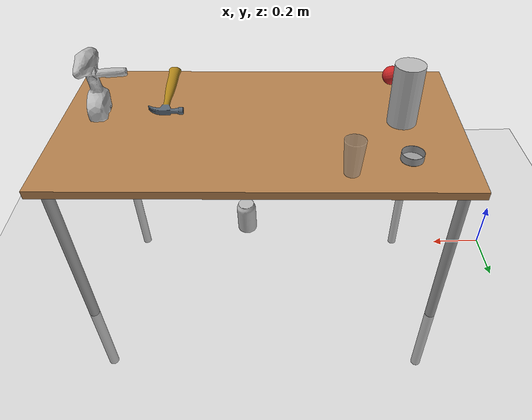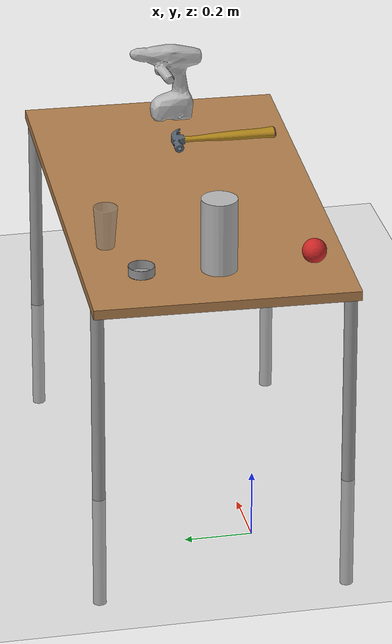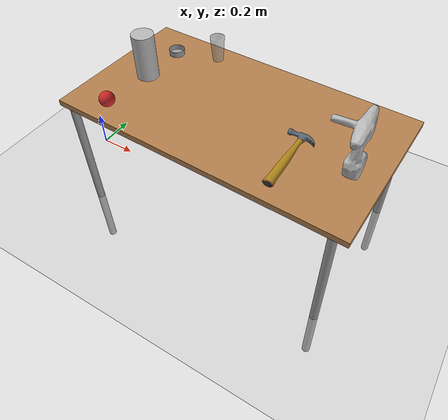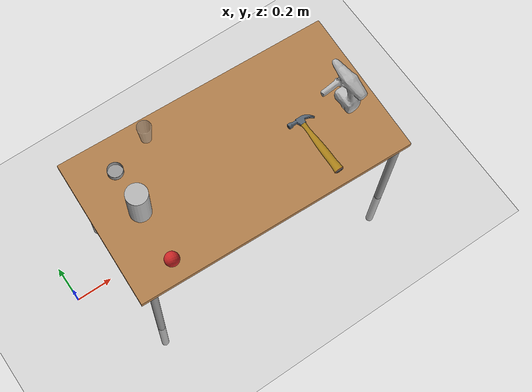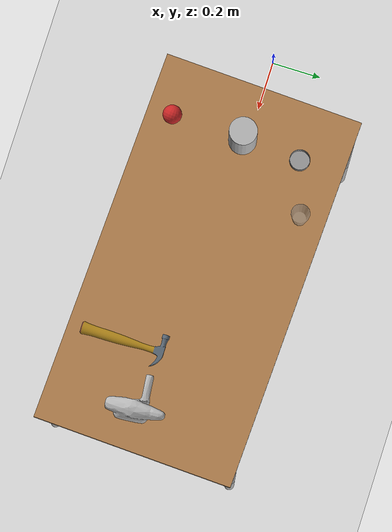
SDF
<sdf version="1.4">
 <world name="table_with_objects">
  <light name="sun" type="directional">
   <pose>0 0 10 0 -0 0</pose>
   <diffuse>0.8 0.8 0.8 1</diffuse>
   <specular>0.2 0.2 0.2 1</specular>
   <attenuation>
    <range>1000</range>
    <constant>0.9</constant>
    <linear>0.01</linear>
    <quadratic>0.001</quadratic>
   </attenuation>
   <direction>-0.5 0.1 -0.9</direction>
  </light>
  <model name="ground_plane">
   <static>1</static>
   <link name="link">
    <collision name="collision">
     <geometry><plane><normal>0 0 1</normal><size>100 100</size></plane></geometry>
     <surface><friction><ode><mu>100</mu><mu2>50</mu2></ode></friction></surface>
    </collision>
    <visual name="visual">
     <cast_shadows>0</cast_shadows>
     <geometry><plane><normal>0 0 1</normal><size>100 100</size></plane></geometry>
     <material>
      <script><uri>file://media/materials/scripts/gazebo.material</uri><name>Gazebo/Grey</name></script>
     </material>
    </visual>
    <velocity_decay><linear>0</linear><angular>0</angular></velocity_decay>
   </link>
  </model>
  <physics type="ode">
   <real_time_factor>1</real_time_factor>
   <real_time_update_rate>1000</real_time_update_rate>
   <max_step_size>0.001000</max_step_size>
   <gravity>0 0 -9.8</gravity>
  </physics>
  <scene><ambient>0.4 0.4 0.4 1</ambient><background>0.7 0.7 0.7 1</background><shadows>0</shadows></scene>
  <model name="table">
   <static>1</static>
   <link name="link">
    <collision name="surface">
     <pose>0 0 1 0 -0 0</pose>
     <geometry><box><size>1.5 0.8 0.03</size></box></geometry>
     <surface><friction><ode><mu>0.6</mu><mu2>0.6</mu2></ode></friction></surface>
    </collision>
    <visual name="visual1">
     <pose>0 0 1 0 -0 0</pose>
     <geometry><box><size>1.5 0.8 0.03</size></box></geometry>
     <material>
      <script><uri>file://media/materials/scripts/gazebo.material</uri><name>Gazebo/Wood</name></script>
     </material>
    </visual>
    <collision name="front_left_leg">
     <pose>0.68 0.38 0.5 0 -0 0</pose>
     <geometry><cylinder><radius>0.02</radius><length>1</length></cylinder></geometry>
    </collision>
    <visual name="front_left_leg">
     <pose>0.68 0.38 0.5 0 -0 0</pose>
     <geometry><cylinder><radius>0.02</radius><length>1</length></cylinder></geometry>
     <material>
      <script><uri>file://media/materials/scripts/gazebo.material</uri><name>Gazebo/Grey</name></script>
     </material>
    </visual>
    <collision name="front_right_leg">
     <pose>0.68 -0.38 0.5 0 -0 0</pose>
     <geometry><cylinder><radius>0.02</radius><length>1</length></cylinder></geometry>
    </collision>
    <visual name="front_right_leg">
     <pose>0.68 -0.38 0.5 0 -0 0</pose>
     <geometry><cylinder><radius>0.02</radius><length>1</length></cylinder></geometry>
     <material>
      <script><uri>file://media/materials/scripts/gazebo.material</uri><name>Gazebo/Grey</name></script>
     </material>
    </visual>
    <collision name="back_right_leg">
     <pose>-0.68 -0.38 0.5 0 -0 0</pose>
     <geometry><cylinder><radius>0.02</radius><length>1</length></cylinder></geometry>
    </collision>
    <visual name="back_right_leg">
     <pose>-0.68 -0.38 0.5 0 -0 0</pose>
     <geometry><cylinder><radius>0.02</radius><length>1</length></cylinder></geometry>
     <material>
      <script><uri>file://media/materials/scripts/gazebo.material</uri><name>Gazebo/Grey</name></script>
     </material>
    </visual>
    <collision name="back_left_leg">
     <pose>-0.68 0.38 0.5 0 -0 0</pose>
     <geometry><cylinder><radius>0.02</radius><length>1</length></cylinder></geometry>
    </collision>
    <visual name="back_left_leg">
     <pose>-0.68 0.38 0.5 0 -0 0</pose>
     <geometry><cylinder><radius>0.02</radius><length>1</length></cylinder></geometry>
     <material>
      <script><uri>file://media/materials/scripts/gazebo.material</uri><name>Gazebo/Grey</name></script>
     </material>
    </visual>
    <velocity_decay><linear>0</linear><angular>0</angular></velocity_decay>
   </link>
   <pose>0.975248 -0.008136 -0.36 0 0 -0.04</pose>
  </model>
  <model name="coke_can">
   <link name="link">
    <inertial>
     <pose>-0.01 -0.012 0.15 0 -0 0</pose>
     <mass>0.39</mass>
     <inertia><ixx>0.00058</ixx><ixy>0</ixy><ixz>0</ixz><iyy>0.00058</iyy><iyz>0</iyz><izz>0.00019</izz></inertia>
    </inertial>
    <collision name="collision">
     <pose>0 0 -0.46 0 -0 0</pose>
     <geometry><mesh><uri>model://coke_can/meshes/coke_can.dae</uri></mesh></geometry>
     <surface>
      <friction><ode><mu>1</mu><mu2>1</mu2></ode></friction>
      <contact><ode><kp>1e+07</kp><kd>1</kd><min_depth>0.001</min_depth><max_vel>0.1</max_vel></ode></contact>
     </surface>
    </collision>
    <visual name="visual">
     <pose>0 0 -0.46 0 -0 0</pose>
     <geometry><mesh><uri>model://coke_can/meshes/coke_can.dae</uri></mesh></geometry>
    </visual>
    <velocity_decay><linear>0</linear><angular>0</angular></velocity_decay>
   </link>
   <pose>1.03141 0.273749 0.651111 -0.010721 0.003848 0.534527</pose>
   <static>0</static>
  </model>
  <model name="beer">
   <link name="link">
    <pose>0 0 0.115 0 -0 0</pose>
    <inertial>
     <mass>0.39</mass>
     <inertia><ixx>0.00058</ixx><ixy>0</ixy><ixz>0</ixz><iyy>0.00058</iyy><iyz>0</iyz><izz>0.00019</izz></inertia>
    </inertial>
    <collision name="collision">
     <geometry><cylinder><radius>0.055</radius><length>0.23</length></cylinder></geometry>
    </collision>
    <visual name="visual">
     <geometry><cylinder><radius>0.055</radius><length>0.23</length></cylinder></geometry>
     <material>
      <script>
       <uri>model://beer/materials/scripts</uri>
       <uri>model://beer/materials/textures</uri>
       <name>Beer/Diffuse</name>
      </script>
     </material>
    </visual>
    <velocity_decay><linear>0</linear><angular>0</angular></velocity_decay>
   </link>
   <pose>0.447449 0.002686 0.655001 1e-06 -2.7e-05 0.000953</pose>
   <static>0</static>
  </model>
  <model name="drill">
   <link name="link">
    <inertial>
     <pose>-0.00637 -0.008 0.13254 0 -0 0</pose>
     <inertia>
      <ixx>0.0133113</ixx>
      <ixy>-0.00030365</ixy>
      <ixz>-0.00034148</ixz>
      <iyy>0.0115766</iyy>
      <iyz>0.00088073</iyz>
      <izz>0.00378028</izz>
     </inertia>
     <mass>1.50252</mass>
    </inertial>
    <collision name="collision">
     <pose>0 0 -0.09 0 -0 0</pose>
     <geometry><mesh><uri>model://cordless_drill/meshes/cordless_drill.stl</uri></mesh></geometry>
     <surface><contact><ode><max_vel>0.1</max_vel><min_depth>0.001</min_depth></ode></contact></surface>
    </collision>
    <visual name="visual">
     <pose>0 0 -0.09 0 -0 0</pose>
     <geometry><mesh><uri>model://cordless_drill/meshes/cordless_drill.dae</uri></mesh></geometry>
    </visual>
    <velocity_decay><linear>0</linear><angular>0</angular></velocity_decay>
   </link>
   <pose>1.58272 -0.07685 0.652931 1.1e-05 -3.8e-05 0.032054</pose>
   <static>1</static>
  </model>
  <model name="cricket_ball">
   <link name="link">
    <pose>0 0 0.0375 0 -0 0</pose>
    <inertial>
     <mass>0.1467</mass>
     <inertia>
      <ixx>8.25187e-05</ixx>
      <ixy>0</ixy>
      <ixz>0</ixz>
      <iyy>8.25187e-05</iyy>
      <iyz>0</iyz>
      <izz>8.25187e-05</izz>
     </inertia>
    </inertial>
    <collision name="collision"><geometry><sphere><radius>0.0375</radius></sphere></geometry></collision>
    <visual name="visual">
     <geometry><sphere><radius>0.0375</radius></sphere></geometry>
     <material>
      <script><uri>file://media/materials/scripts/gazebo.material</uri><name>Gazebo/Red</name></script>
     </material>
    </visual>
    <velocity_decay><linear>0</linear><angular>0.005</angular></velocity_decay>
   </link>
   <pose>0.473059 -0.288525 0.682099 -1.28388 -0.199875 1.41679</pose>
   <static>0</static>
  </model>
  <model name="hammer">
   <static>1</static>
   <link name="link">
    <collision name="collision">
     <geometry><mesh><uri>model://hammer/meshes/hammer.dae</uri></mesh></geometry>
    </collision>
    <visual name="visual"><geometry><mesh><uri>model://hammer/meshes/hammer.dae</uri></mesh></geometry></visual>
    <velocity_decay><linear>0</linear><angular>0</angular></velocity_decay>
   </link>
   <pose>1.31898 -0.129869 0.69 0 -0 0</pose>
   <static>1</static>
  </model>
  <model name="plastic_cup">
   <link name="link">
    <pose>0 0 0.065 0 -0 0</pose>
    <inertial>
     <mass>0.0599</mass>
     <inertia>
      <ixx>0.000302896</ixx>
      <ixy>0</ixy>
      <ixz>0</ixz>
      <iyy>0.000302896</iyy>
      <iyz>0</iyz>
      <izz>3.28764e-05</izz>
     </inertia>
    </inertial>
    <collision name="collision">
     <geometry><mesh><uri>model://plastic_cup/meshes/plastic_cup.dae</uri></mesh></geometry>
     <surface><contact><ode><max_vel>0.1</max_vel><min_depth>0.001</min_depth></ode></contact></surface>
    </collision>
    <visual name="visual">
     <geometry><mesh><uri>model://plastic_cup/meshes/plastic_cup.dae</uri></mesh></geometry>
     <material>
      <script><uri>file://media/materials/scripts/gazebo.material</uri><name>Gazebo/GreyTransparent</name></script>
     </material>
    </visual>
    <velocity_decay><linear>0</linear><angular>0</angular></velocity_decay>
   </link>
   <pose>0.671163 0.295912 0.662517 0.003948 -0.011985 -0.000226</pose>
   <static>0</static>
  </model>
  <model name="round_tin_base">
   <link name="link">
    <inertial>
     <pose>0 0 0.014085 0 -0 0</pose>
     <mass>0.0223</mass>
     <inertia>
      <ixx>1.93147e-05</ixx>
      <ixy>0</ixy>
      <ixz>0</ixz>
      <iyy>1.93147e-05</iyy>
      <iyz>0</iyz>
      <izz>3.568e-05</izz>
     </inertia>
    </inertial>
    <collision name="collision_cylinder">
     <pose>0 0 0.001 0 -0 0</pose>
     <geometry><cylinder><radius>0.04</radius><length>0.002</length></cylinder></geometry>
     <surface><contact><ode><max_vel>0.1</max_vel><min_depth>0.0001</min_depth></ode></contact></surface>
    </collision>
    <visual name="visual_cylinder">
     <pose>0 0 0.001 0 -0 0</pose>
     <geometry><cylinder><radius>0.04</radius><length>0.002</length></cylinder></geometry>
     <material>
      <script><uri>file://media/materials/scripts/gazebo.material</uri><name>Gazebo/Grey</name></script>
     </material>
    </visual>
    <collision name="collision_mesh">
     <pose>0 0 0.001 0 -0 0</pose>
     <geometry><mesh><uri>model://round_tin_base/meshes/round_tin_base.dae</uri></mesh></geometry>
     <surface><contact><ode><max_vel>0.1</max_vel><min_depth>0.0001</min_depth></ode></contact></surface>
    </collision>
    <visual name="visual_mesh">
     <pose>0 0 0.001 0 -0 0</pose>
     <geometry><mesh><uri>model://round_tin_base/meshes/round_tin_base.dae</uri></mesh></geometry>
     <material>
      <script><uri>file://media/materials/scripts/gazebo.material</uri><name>Gazebo/Grey</name></script>
     </material>
    </visual>
    <velocity_decay><linear>0</linear><angular>0</angular></velocity_decay>
   </link>
   <pose>0.456043 0.236779 0.65491 -0.000238 5.2e-05 -1.9e-05</pose>
   <static>0</static>
  </model>
 </world>
</sdf>
